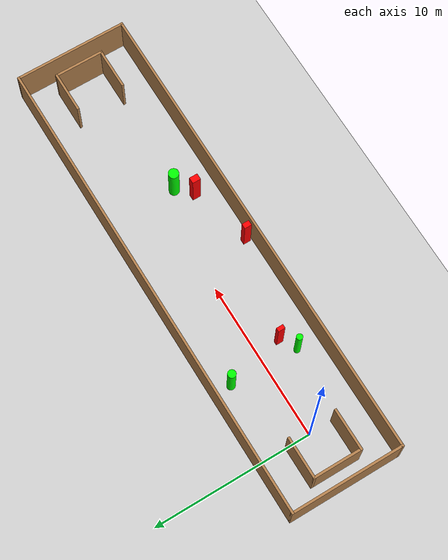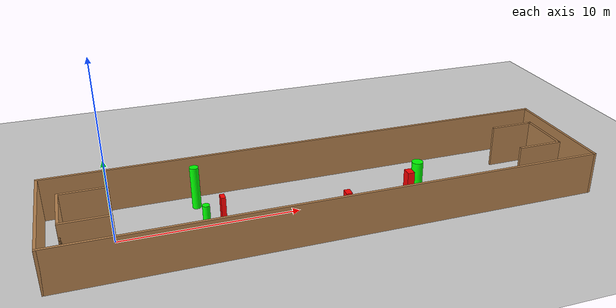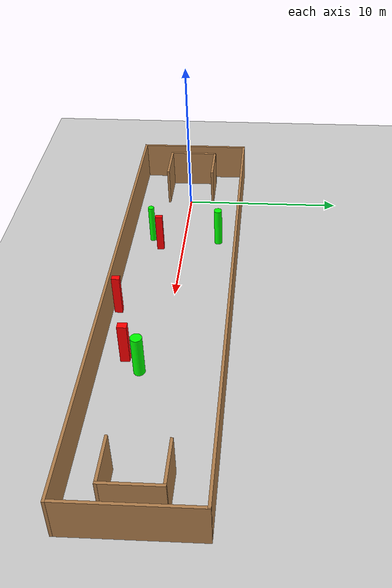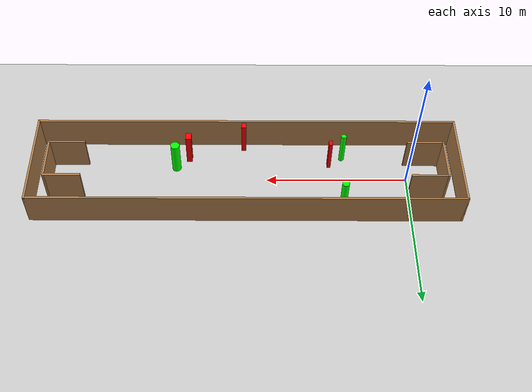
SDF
<sdf version="1.7">
 <world name="default">
  <light name="sun" type="directional">
   <pose>0 0 10 0 -0 0</pose>
   <diffuse>0.8 0.8 0.8 1</diffuse>
   <specular>0.2 0.2 0.2 1</specular>
   <attenuation>
    <range>1000</range>
    <constant>0.9</constant>
    <linear>0.01</linear>
    <quadratic>0.001</quadratic>
   </attenuation>
   <direction>-0.5 0.1 -0.9</direction>
   <spot><inner_angle>0</inner_angle><outer_angle>0</outer_angle><falloff>0</falloff></spot>
  </light>
  <model name="ground_plane">
   <static>1</static>
   <link name="link">
    <collision name="collision">
     <geometry><plane><normal>0 0 1</normal><size>100 100</size></plane></geometry>
     <surface>
      <contact><collide_bitmask>65535</collide_bitmask></contact>
      <friction><ode><mu>100</mu><mu2>50</mu2></ode></friction>
     </surface>
    </collision>
    <visual name="visual">
     <cast_shadows>0</cast_shadows>
     <geometry><plane><normal>0 0 1</normal><size>100 100</size></plane></geometry>
     <material>
      <script><uri>file://media/materials/scripts/gazebo.material</uri><name>Gazebo/Grey</name></script>
     </material>
    </visual>
   </link>
  </model>
  <gravity>0 0 -9.8</gravity>
  <magnetic_field>6e-06 2.3e-05 -4.2e-05</magnetic_field>
  <atmosphere type="adiabatic"/>
  <physics type="ode">
   <max_step_size>0.001</max_step_size>
   <real_time_factor>1</real_time_factor>
   <real_time_update_rate>1000</real_time_update_rate>
  </physics>
  <scene><ambient>0.4 0.4 0.4 1</ambient><background>0.7 0.7 0.7 1</background><shadows>1</shadows></scene>
  <spherical_coordinates>
   <surface_model>EARTH_WGS84</surface_model>
   <latitude_deg>0</latitude_deg>
   <longitude_deg>0</longitude_deg>
   <elevation>0</elevation>
   <heading_deg>0</heading_deg>
  </spherical_coordinates>
  <model name="my_base_walls">
   <link name="Wall_0">
    <collision name="Wall_0_Collision">
     <geometry><box><size>7.15 0.15 2.5</size></box></geometry>
     <pose>0 0 1.25 0 -0 0</pose>
    </collision>
    <visual name="Wall_0_Visual">
     <pose>0 0 1.25 0 -0 0</pose>
     <geometry><box><size>7.15 0.15 2.5</size></box></geometry>
     <material>
      <script><uri>file://media/materials/scripts/gazebo.material</uri><name>Gazebo/Wood</name></script>
      <ambient>1 1 1 1</ambient>
     </material>
     <meta><layer>0</layer></meta>
    </visual>
    <pose>-15 0 0 0 -0 1.5708</pose>
   </link>
   <link name="Wall_10">
    <collision name="Wall_10_Collision">
     <geometry><box><size>2.65 0.15 2.5</size></box></geometry>
     <pose>0 0 1.25 0 -0 0</pose>
    </collision>
    <visual name="Wall_10_Visual">
     <pose>0 0 1.25 0 -0 0</pose>
     <geometry><box><size>2.65 0.15 2.5</size></box></geometry>
     <material>
      <script><uri>file://media/materials/scripts/gazebo.material</uri><name>Gazebo/Wood</name></script>
      <ambient>1 1 1 1</ambient>
     </material>
     <meta><layer>0</layer></meta>
    </visual>
    <pose>-12.75 -1.5 0 0 -0 0</pose>
   </link>
   <link name="Wall_12">
    <collision name="Wall_12_Collision">
     <geometry><box><size>2.65 0.15 2.5</size></box></geometry>
     <pose>0 0 1.25 0 -0 0</pose>
    </collision>
    <visual name="Wall_12_Visual">
     <pose>0 0 1.25 0 -0 0</pose>
     <geometry><box><size>2.65 0.15 2.5</size></box></geometry>
     <material>
      <script><uri>file://media/materials/scripts/gazebo.material</uri><name>Gazebo/Wood</name></script>
      <ambient>1 1 1 1</ambient>
     </material>
     <meta><layer>0</layer></meta>
    </visual>
    <pose>-12.75 1.5 0 0 -0 0</pose>
   </link>
   <link name="Wall_14">
    <collision name="Wall_14_Collision">
     <geometry><box><size>3.15 0.15 2.5</size></box></geometry>
     <pose>0 0 1.25 0 -0 0</pose>
    </collision>
    <visual name="Wall_14_Visual">
     <pose>0 0 1.25 0 -0 0</pose>
     <geometry><box><size>3.15 0.15 2.5</size></box></geometry>
     <material>
      <script><uri>file://media/materials/scripts/gazebo.material</uri><name>Gazebo/Wood</name></script>
      <ambient>1 1 1 1</ambient>
     </material>
     <meta><layer>0</layer></meta>
    </visual>
    <pose>14 0 0 0 -0 -1.5708</pose>
   </link>
   <link name="Wall_15">
    <collision name="Wall_15_Collision">
     <geometry><box><size>2.65 0.15 2.5</size></box></geometry>
     <pose>0 0 1.25 0 -0 0</pose>
    </collision>
    <visual name="Wall_15_Visual">
     <pose>0 0 1.25 0 -0 0</pose>
     <geometry><box><size>2.65 0.15 2.5</size></box></geometry>
     <material>
      <script><uri>file://media/materials/scripts/gazebo.material</uri><name>Gazebo/Wood</name></script>
      <ambient>1 1 1 1</ambient>
     </material>
     <meta><layer>0</layer></meta>
    </visual>
    <pose>12.75 -1.5 0 0 -0 3.14159</pose>
   </link>
   <link name="Wall_17">
    <collision name="Wall_17_Collision">
     <geometry><box><size>2.65 0.15 2.5</size></box></geometry>
     <pose>0 0 1.25 0 -0 0</pose>
    </collision>
    <visual name="Wall_17_Visual">
     <pose>0 0 1.25 0 -0 0</pose>
     <geometry><box><size>2.65 0.15 2.5</size></box></geometry>
     <material>
      <script><uri>file://media/materials/scripts/gazebo.material</uri><name>Gazebo/Wood</name></script>
      <ambient>1 1 1 1</ambient>
     </material>
     <meta><layer>0</layer></meta>
    </visual>
    <pose>12.75 1.5 0 0 -0 3.14159</pose>
   </link>
   <link name="Wall_2">
    <collision name="Wall_2_Collision">
     <geometry><box><size>30.15 0.15 2.5</size></box></geometry>
     <pose>0 0 1.25 0 -0 0</pose>
    </collision>
    <visual name="Wall_2_Visual">
     <pose>0 0 1.25 0 -0 0</pose>
     <geometry><box><size>30.15 0.15 2.5</size></box></geometry>
     <material>
      <script><uri>file://media/materials/scripts/gazebo.material</uri><name>Gazebo/Wood</name></script>
      <ambient>1 1 1 1</ambient>
     </material>
     <meta><layer>0</layer></meta>
    </visual>
    <pose>-0 -3.5 0 0 -0 0</pose>
   </link>
   <link name="Wall_4">
    <collision name="Wall_4_Collision">
     <geometry><box><size>30.15 0.15 2.5</size></box></geometry>
     <pose>0 0 1.25 0 -0 0</pose>
    </collision>
    <visual name="Wall_4_Visual">
     <pose>0 0 1.25 0 -0 0</pose>
     <geometry><box><size>30.15 0.15 2.5</size></box></geometry>
     <material>
      <script><uri>file://media/materials/scripts/gazebo.material</uri><name>Gazebo/Wood</name></script>
      <ambient>1 1 1 1</ambient>
     </material>
     <meta><layer>0</layer></meta>
    </visual>
    <pose>-0 3.5 0 0 -0 0</pose>
   </link>
   <link name="Wall_6">
    <collision name="Wall_6_Collision">
     <geometry><box><size>7.15 0.15 2.5</size></box></geometry>
     <pose>0 0 1.25 0 -0 0</pose>
    </collision>
    <visual name="Wall_6_Visual">
     <pose>0 0 1.25 0 -0 0</pose>
     <geometry><box><size>7.15 0.15 2.5</size></box></geometry>
     <material>
      <script><uri>file://media/materials/scripts/gazebo.material</uri><name>Gazebo/Wood</name></script>
      <ambient>1 1 1 1</ambient>
     </material>
     <meta><layer>0</layer></meta>
    </visual>
    <pose>15 0 0 0 -0 -1.5708</pose>
   </link>
   <link name="Wall_9">
    <collision name="Wall_9_Collision">
     <geometry><box><size>3.15 0.15 2.5</size></box></geometry>
     <pose>0 0 1.25 0 -0 0</pose>
    </collision>
    <visual name="Wall_9_Visual">
     <pose>0 0 1.25 0 -0 0</pose>
     <geometry><box><size>3.15 0.15 2.5</size></box></geometry>
     <material>
      <script><uri>file://media/materials/scripts/gazebo.material</uri><name>Gazebo/Wood</name></script>
      <ambient>1 1 1 1</ambient>
     </material>
     <meta><layer>0</layer></meta>
    </visual>
    <pose>-14 0 0 0 -0 -1.5708</pose>
   </link>
   <static>1</static>
   <pose>11.5 0 0 0 -0 0</pose>
  </model>
  <model name="cylinder1">
   <static>1</static>
   <link name="link">
    <inertial>
     <mass>1</mass>
     <inertia><ixx>0.5</ixx><ixy>0</ixy><ixz>0</ixz><iyy>0.5</iyy><iyz>0</iyz><izz>1</izz></inertia>
    </inertial>
    <collision name="collision">
     <geometry><cylinder><radius>0.18975824368574573</radius><length>2.5</length></cylinder></geometry>
    </collision>
    <visual name="visual">
     <geometry><cylinder><radius>0.18975824368574573</radius><length>2.5</length></cylinder></geometry>
     <material>
      <ambient>0 1 0 1</ambient>
      <diffuse>0 1 0 1</diffuse>
      <specular>0.1 0.1 0.1 1</specular>
      <emissive>0 0 0 0</emissive>
     </material>
    </visual>
   </link>
   <pose>4.5125377149936945 -2.0557857178617116 1.25 0 0 0</pose>
  </model>
  <model name="cylinder2">
   <static>1</static>
   <link name="link">
    <inertial>
     <mass>1</mass>
     <inertia><ixx>0.5</ixx><ixy>0</ixy><ixz>0</ixz><iyy>0.5</iyy><iyz>0</iyz><izz>1</izz></inertia>
    </inertial>
    <collision name="collision">
     <geometry><cylinder><radius>0.2504460189930458</radius><length>2.5</length></cylinder></geometry>
    </collision>
    <visual name="visual">
     <geometry><cylinder><radius>0.2504460189930458</radius><length>2.5</length></cylinder></geometry>
     <material>
      <ambient>0 1 0 1</ambient>
      <diffuse>0 1 0 1</diffuse>
      <specular>0.1 0.1 0.1 1</specular>
      <emissive>0 0 0 0</emissive>
     </material>
    </visual>
   </link>
   <pose>4.6509109241876505 2.2445884093192134 1.25 0 0 0</pose>
  </model>
  <model name="cylinder3">
   <static>1</static>
   <link name="link">
    <inertial>
     <mass>1</mass>
     <inertia><ixx>0.5</ixx><ixy>0</ixy><ixz>0</ixz><iyy>0.5</iyy><iyz>0</iyz><izz>1</izz></inertia>
    </inertial>
    <collision name="collision">
     <geometry><cylinder><radius>0.32053196631998065</radius><length>2.5</length></cylinder></geometry>
    </collision>
    <visual name="visual">
     <geometry><cylinder><radius>0.32053196631998065</radius><length>2.5</length></cylinder></geometry>
     <material>
      <ambient>0 1 0 1</ambient>
      <diffuse>0 1 0 1</diffuse>
      <specular>0.1 0.1 0.1 1</specular>
      <emissive>0 0 0 0</emissive>
     </material>
    </visual>
   </link>
   <pose>16.53159254456593 -1.1489724128903998 1.25 0 0 0</pose>
  </model>
  <model name="box1">
   <static>1</static>
   <link name="link">
    <inertial>
     <mass>1</mass>
     <inertia><ixx>0.083</ixx><ixy>0</ixy><ixz>0</ixz><iyy>0.083</iyy><iyz>0</iyz><izz>0.083</izz></inertia>
    </inertial>
    <collision name="collision">
     <geometry><box><size>0.3280485208750453 0.4606510587840207 2.5</size></box></geometry>
    </collision>
    <visual name="visual">
     <geometry><box><size>0.3280485208750453 0.4606510587840207 2.5</size></box></geometry>
     <material>
      <ambient>1 0 0 1</ambient>
      <diffuse>1 0 0 1</diffuse>
      <specular>0.1 0.1 0.1 1</specular>
      <emissive>0 0 0 0</emissive>
     </material>
    </visual>
    <sensor name="my_contact" type="contact">
     <contact><collision>box_collision</collision><topic>__default_topic__</topic></contact>
    </sensor>
   </link>
   <pose>11.677082901438121 -3.078708170041378 1.25 0 0 0</pose>
  </model>
  <model name="box2">
   <static>1</static>
   <link name="link">
    <inertial>
     <mass>1</mass>
     <inertia><ixx>0.083</ixx><ixy>0</ixy><ixz>0</ixz><iyy>0.083</iyy><iyz>0</iyz><izz>0.083</izz></inertia>
    </inertial>
    <collision name="collision">
     <geometry><box><size>0.39648110149645377 0.5287744439224927 2.5</size></box></geometry>
    </collision>
    <visual name="visual">
     <geometry><box><size>0.39648110149645377 0.5287744439224927 2.5</size></box></geometry>
     <material>
      <ambient>1 0 0 1</ambient>
      <diffuse>1 0 0 1</diffuse>
      <specular>0.1 0.1 0.1 1</specular>
      <emissive>0 0 0 0</emissive>
     </material>
    </visual>
    <sensor name="my_contact" type="contact">
     <contact><collision>box_collision</collision><topic>__default_topic__</topic></contact>
    </sensor>
   </link>
   <pose>15.623966100627845 -2.037011991253042 1.25 0 0 0</pose>
  </model>
  <model name="box3">
   <static>1</static>
   <link name="link">
    <inertial>
     <mass>1</mass>
     <inertia><ixx>0.083</ixx><ixy>0</ixy><ixz>0</ixz><iyy>0.083</iyy><iyz>0</iyz><izz>0.083</izz></inertia>
    </inertial>
    <collision name="collision">
     <geometry><box><size>0.24941545759780148 0.4384236950805762 2.5</size></box></geometry>
    </collision>
    <visual name="visual">
     <geometry><box><size>0.24941545759780148 0.4384236950805762 2.5</size></box></geometry>
     <material>
      <ambient>1 0 0 1</ambient>
      <diffuse>1 0 0 1</diffuse>
      <specular>0.1 0.1 0.1 1</specular>
      <emissive>0 0 0 0</emissive>
     </material>
    </visual>
    <sensor name="my_contact" type="contact">
     <contact><collision>box_collision</collision><topic>__default_topic__</topic></contact>
    </sensor>
   </link>
   <pose>5.477525979000429 -1.4293850526309928 1.25 0 0 0</pose>
  </model>
 </world>
</sdf>
